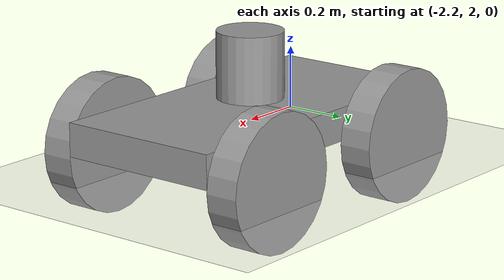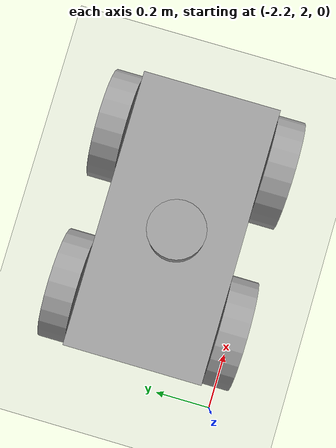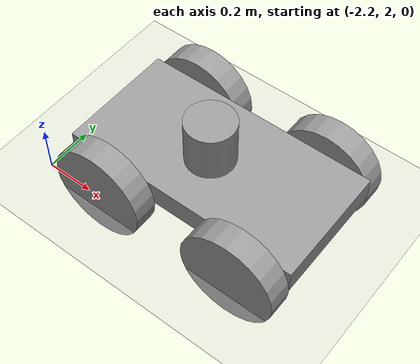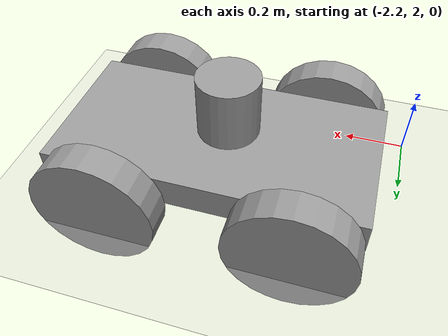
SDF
<sdf version="1.7">
 <world name="__default__">
  <model name="simplecar_clone">
   <link name="link_0">
    <inertial>
     <mass>1</mass>
     <inertia>
      <ixx>0.166667</ixx>
      <ixy>0</ixy>
      <ixz>0</ixz>
      <iyy>0.166667</iyy>
      <iyz>0</iyz>
      <izz>0.166667</izz>
     </inertia>
    </inertial>
    <pose>0.003333 0.003333 0.147691 0 -0 0</pose>
    <visual name="visual">
     <geometry><box><size>1 0.5 0.1</size></box></geometry>
     <material>
      <lighting>1</lighting>
      <script><uri>file://media/materials/scripts/gazebo.material</uri><name>Gazebo/Grey</name></script>
      <shader type="pixel"><normal_map>__default__</normal_map></shader>
      <ambient>0.3 0.3 0.3 1</ambient>
      <diffuse>0.7 0.7 0.7 1</diffuse>
      <specular>0.01 0.01 0.01 1</specular>
      <emissive>0 0 0 1</emissive>
     </material>
    </visual>
    <collision name="collision">
     <geometry><box><size>1 0.5 0.1</size></box></geometry>
     <surface>
      <friction>
       <ode><mu>1</mu><mu2>1</mu2><fdir1>0 0 0</fdir1><slip1>0</slip1><slip2>0</slip2></ode>
       <torsional>
        <coefficient>1</coefficient>
        <patch_radius>0</patch_radius>
        <surface_radius>0</surface_radius>
        <use_patch_radius>1</use_patch_radius>
        <ode><slip>0</slip></ode>
       </torsional>
      </friction>
      <bounce><restitution_coefficient>0</restitution_coefficient><threshold>1e+06</threshold></bounce>
      <contact>
       <collide_without_contact>0</collide_without_contact>
       <collide_without_contact_bitmask>1</collide_without_contact_bitmask>
       <collide_bitmask>1</collide_bitmask>
       <ode>
        <soft_cfm>0</soft_cfm>
        <soft_erp>0.2</soft_erp>
        <kp>1e+13</kp>
        <kd>1</kd>
        <max_vel>0.01</max_vel>
        <min_depth>0</min_depth>
       </ode>
       <bullet>
        <split_impulse>1</split_impulse>
        <split_impulse_penetration_threshold>-0.01</split_impulse_penetration_threshold>
        <soft_cfm>0</soft_cfm>
        <soft_erp>0.2</soft_erp>
        <kp>1e+13</kp>
        <kd>1</kd>
       </bullet>
      </contact>
     </surface>
    </collision>
   </link>
   <link name="link_1">
    <inertial>
     <mass>1</mass>
     <inertia><ixx>0.145833</ixx><ixy>0</ixy><ixz>0</ixz><iyy>0.145833</iyy><iyz>0</iyz><izz>0.125</izz></inertia>
    </inertial>
    <pose>-0.296667 0.303353 -0.112314 0 -0 0</pose>
    <visual name="visual">
     <pose>0 0 0.2 1.5707 -0 0</pose>
     <geometry><cylinder><radius>0.2</radius><length>0.1</length></cylinder></geometry>
     <material>
      <lighting>1</lighting>
      <script><uri>file://media/materials/scripts/gazebo.material</uri><name>Gazebo/Grey</name></script>
      <shader type="pixel"><normal_map>__default__</normal_map></shader>
      <ambient>0.3 0.3 0.3 1</ambient>
      <diffuse>0.7 0.7 0.7 1</diffuse>
      <specular>0.01 0.01 0.01 1</specular>
      <emissive>0 0 0 1</emissive>
     </material>
    </visual>
    <collision name="collision">
     <pose>0 0 0.2 1.5707 -0 0</pose>
     <geometry><cylinder><radius>0.2</radius><length>0.1</length></cylinder></geometry>
     <surface>
      <friction>
       <ode><mu>1</mu><mu2>1</mu2><fdir1>0 0 0</fdir1><slip1>0</slip1><slip2>0</slip2></ode>
       <torsional>
        <coefficient>1</coefficient>
        <patch_radius>0</patch_radius>
        <surface_radius>0</surface_radius>
        <use_patch_radius>1</use_patch_radius>
        <ode><slip>0</slip></ode>
       </torsional>
      </friction>
      <bounce><restitution_coefficient>0</restitution_coefficient><threshold>1e+06</threshold></bounce>
      <contact>
       <collide_without_contact>0</collide_without_contact>
       <collide_without_contact_bitmask>1</collide_without_contact_bitmask>
       <collide_bitmask>1</collide_bitmask>
       <ode>
        <soft_cfm>0</soft_cfm>
        <soft_erp>0.2</soft_erp>
        <kp>1e+13</kp>
        <kd>1</kd>
        <max_vel>0.01</max_vel>
        <min_depth>0</min_depth>
       </ode>
       <bullet>
        <split_impulse>1</split_impulse>
        <split_impulse_penetration_threshold>-0.01</split_impulse_penetration_threshold>
        <soft_cfm>0</soft_cfm>
        <soft_erp>0.2</soft_erp>
        <kp>1e+13</kp>
        <kd>1</kd>
       </bullet>
      </contact>
     </surface>
    </collision>
   </link>
   <link name="link_1_clone_0">
    <inertial>
     <mass>1</mass>
     <inertia><ixx>0.145833</ixx><ixy>0</ixy><ixz>0</ixz><iyy>0.145833</iyy><iyz>0</iyz><izz>0.125</izz></inertia>
    </inertial>
    <pose>0.303333 0.303353 -0.112314 0 -0 0</pose>
    <visual name="visual">
     <pose>0 0 0.2 1.5707 -0 0</pose>
     <geometry><cylinder><radius>0.2</radius><length>0.1</length></cylinder></geometry>
     <material>
      <lighting>1</lighting>
      <script><uri>file://media/materials/scripts/gazebo.material</uri><name>Gazebo/Grey</name></script>
      <shader type="pixel"><normal_map>__default__</normal_map></shader>
      <ambient>0.3 0.3 0.3 1</ambient>
      <diffuse>0.7 0.7 0.7 1</diffuse>
      <specular>0.01 0.01 0.01 1</specular>
      <emissive>0 0 0 1</emissive>
     </material>
    </visual>
    <collision name="collision">
     <pose>0 0 0.2 1.5707 -0 0</pose>
     <geometry><cylinder><radius>0.2</radius><length>0.1</length></cylinder></geometry>
     <surface>
      <friction>
       <ode><mu>1</mu><mu2>1</mu2><fdir1>0 0 0</fdir1><slip1>0</slip1><slip2>0</slip2></ode>
       <torsional>
        <coefficient>1</coefficient>
        <patch_radius>0</patch_radius>
        <surface_radius>0</surface_radius>
        <use_patch_radius>1</use_patch_radius>
        <ode><slip>0</slip></ode>
       </torsional>
      </friction>
      <bounce><restitution_coefficient>0</restitution_coefficient><threshold>1e+06</threshold></bounce>
      <contact>
       <collide_without_contact>0</collide_without_contact>
       <collide_without_contact_bitmask>1</collide_without_contact_bitmask>
       <collide_bitmask>1</collide_bitmask>
       <ode>
        <soft_cfm>0</soft_cfm>
        <soft_erp>0.2</soft_erp>
        <kp>1e+13</kp>
        <kd>1</kd>
        <max_vel>0.01</max_vel>
        <min_depth>0</min_depth>
       </ode>
       <bullet>
        <split_impulse>1</split_impulse>
        <split_impulse_penetration_threshold>-0.01</split_impulse_penetration_threshold>
        <soft_cfm>0</soft_cfm>
        <soft_erp>0.2</soft_erp>
        <kp>1e+13</kp>
        <kd>1</kd>
       </bullet>
      </contact>
     </surface>
    </collision>
   </link>
   <link name="link_1_clone_1">
    <inertial>
     <mass>1</mass>
     <inertia><ixx>0.145833</ixx><ixy>0</ixy><ixz>0</ixz><iyy>0.145833</iyy><iyz>0</iyz><izz>0.125</izz></inertia>
    </inertial>
    <pose>0.303333 -0.296686 -0.112314 0 -0 0</pose>
    <visual name="visual">
     <pose>0 0 0.2 1.5707 -0 0</pose>
     <geometry><cylinder><radius>0.2</radius><length>0.1</length></cylinder></geometry>
     <material>
      <lighting>1</lighting>
      <script><uri>file://media/materials/scripts/gazebo.material</uri><name>Gazebo/Grey</name></script>
      <shader type="pixel"><normal_map>__default__</normal_map></shader>
      <ambient>0.3 0.3 0.3 1</ambient>
      <diffuse>0.7 0.7 0.7 1</diffuse>
      <specular>0.01 0.01 0.01 1</specular>
      <emissive>0 0 0 1</emissive>
     </material>
    </visual>
    <collision name="collision">
     <pose>0 0 0.2 1.5707 -0 0</pose>
     <geometry><cylinder><radius>0.2</radius><length>0.1</length></cylinder></geometry>
     <surface>
      <friction>
       <ode><mu>1</mu><mu2>1</mu2><fdir1>0 0 0</fdir1><slip1>0</slip1><slip2>0</slip2></ode>
       <torsional>
        <coefficient>1</coefficient>
        <patch_radius>0</patch_radius>
        <surface_radius>0</surface_radius>
        <use_patch_radius>1</use_patch_radius>
        <ode><slip>0</slip></ode>
       </torsional>
      </friction>
      <bounce><restitution_coefficient>0</restitution_coefficient><threshold>1e+06</threshold></bounce>
      <contact>
       <collide_without_contact>0</collide_without_contact>
       <collide_without_contact_bitmask>1</collide_without_contact_bitmask>
       <collide_bitmask>1</collide_bitmask>
       <ode>
        <soft_cfm>0</soft_cfm>
        <soft_erp>0.2</soft_erp>
        <kp>1e+13</kp>
        <kd>1</kd>
        <max_vel>0.01</max_vel>
        <min_depth>0</min_depth>
       </ode>
       <bullet>
        <split_impulse>1</split_impulse>
        <split_impulse_penetration_threshold>-0.01</split_impulse_penetration_threshold>
        <soft_cfm>0</soft_cfm>
        <soft_erp>0.2</soft_erp>
        <kp>1e+13</kp>
        <kd>1</kd>
       </bullet>
      </contact>
     </surface>
    </collision>
   </link>
   <link name="link_1_clone_1_clone">
    <inertial>
     <mass>1</mass>
     <inertia><ixx>0.145833</ixx><ixy>0</ixy><ixz>0</ixz><iyy>0.145833</iyy><iyz>0</iyz><izz>0.125</izz></inertia>
    </inertial>
    <pose>-0.296667 -0.296686 -0.112314 0 -0 0</pose>
    <visual name="visual">
     <pose>0 0 0.2 1.5707 -0 0</pose>
     <geometry><cylinder><radius>0.2</radius><length>0.1</length></cylinder></geometry>
     <material>
      <lighting>1</lighting>
      <script><uri>file://media/materials/scripts/gazebo.material</uri><name>Gazebo/Grey</name></script>
      <shader type="pixel"><normal_map>__default__</normal_map></shader>
      <ambient>0.3 0.3 0.3 1</ambient>
      <diffuse>0.7 0.7 0.7 1</diffuse>
      <specular>0.01 0.01 0.01 1</specular>
      <emissive>0 0 0 1</emissive>
     </material>
    </visual>
    <collision name="collision">
     <pose>0 0 0.2 1.5707 -0 0</pose>
     <geometry><cylinder><radius>0.2</radius><length>0.1</length></cylinder></geometry>
     <surface>
      <friction>
       <ode><mu>1</mu><mu2>1</mu2><fdir1>0 0 0</fdir1><slip1>0</slip1><slip2>0</slip2></ode>
       <torsional>
        <coefficient>1</coefficient>
        <patch_radius>0</patch_radius>
        <surface_radius>0</surface_radius>
        <use_patch_radius>1</use_patch_radius>
        <ode><slip>0</slip></ode>
       </torsional>
      </friction>
      <bounce><restitution_coefficient>0</restitution_coefficient><threshold>1e+06</threshold></bounce>
      <contact>
       <collide_without_contact>0</collide_without_contact>
       <collide_without_contact_bitmask>1</collide_without_contact_bitmask>
       <collide_bitmask>1</collide_bitmask>
       <ode>
        <soft_cfm>0</soft_cfm>
        <soft_erp>0.2</soft_erp>
        <kp>1e+13</kp>
        <kd>1</kd>
        <max_vel>0.01</max_vel>
        <min_depth>0</min_depth>
       </ode>
       <bullet>
        <split_impulse>1</split_impulse>
        <split_impulse_penetration_threshold>-0.01</split_impulse_penetration_threshold>
        <soft_cfm>0</soft_cfm>
        <soft_erp>0.2</soft_erp>
        <kp>1e+13</kp>
        <kd>1</kd>
       </bullet>
      </contact>
     </surface>
    </collision>
   </link>
   <link name="link_3">
    <inertial>
     <mass>1</mass>
     <inertia><ixx>0.145833</ixx><ixy>0</ixy><ixz>0</ixz><iyy>0.145833</iyy><iyz>0</iyz><izz>0.125</izz></inertia>
    </inertial>
    <pose>-0.016667 -0.016667 0.301567 0 -0 0</pose>
    <visual name="visual">
     <geometry><cylinder><radius>0.1</radius><length>0.2</length></cylinder></geometry>
     <material>
      <lighting>1</lighting>
      <script><uri>file://media/materials/scripts/gazebo.material</uri><name>Gazebo/Grey</name></script>
      <shader type="pixel"><normal_map>__default__</normal_map></shader>
      <ambient>0.3 0.3 0.3 1</ambient>
      <diffuse>0.7 0.7 0.7 1</diffuse>
      <specular>0.01 0.01 0.01 1</specular>
      <emissive>0 0 0 1</emissive>
     </material>
    </visual>
    <collision name="collision">
     <geometry><cylinder><radius>0.1</radius><length>0.2</length></cylinder></geometry>
     <surface>
      <friction>
       <ode><mu>1</mu><mu2>1</mu2><fdir1>0 0 0</fdir1><slip1>0</slip1><slip2>0</slip2></ode>
       <torsional>
        <coefficient>1</coefficient>
        <patch_radius>0</patch_radius>
        <surface_radius>0</surface_radius>
        <use_patch_radius>1</use_patch_radius>
        <ode><slip>0</slip></ode>
       </torsional>
      </friction>
      <bounce><restitution_coefficient>0</restitution_coefficient><threshold>1e+06</threshold></bounce>
      <contact>
       <collide_without_contact>0</collide_without_contact>
       <collide_without_contact_bitmask>1</collide_without_contact_bitmask>
       <collide_bitmask>1</collide_bitmask>
       <ode>
        <soft_cfm>0</soft_cfm>
        <soft_erp>0.2</soft_erp>
        <kp>1e+13</kp>
        <kd>1</kd>
        <max_vel>0.01</max_vel>
        <min_depth>0</min_depth>
       </ode>
       <bullet>
        <split_impulse>1</split_impulse>
        <split_impulse_penetration_threshold>-0.01</split_impulse_penetration_threshold>
        <soft_cfm>0</soft_cfm>
        <soft_erp>0.2</soft_erp>
        <kp>1e+13</kp>
        <kd>1</kd>
       </bullet>
      </contact>
     </surface>
    </collision>
   </link>
   <joint name="link_0_JOINT_1" type="revolute">
    <parent>link_0</parent>
    <child>link_1</child>
    <axis>
     <xyz>1 0 0</xyz>
     <limit>
      <lower>-1.79769e+308</lower>
      <upper>1.79769e+308</upper>
      <effort>-1</effort>
      <velocity>-1</velocity>
     </limit>
     <dynamics>
      <spring_reference>0</spring_reference>
      <spring_stiffness>0</spring_stiffness>
      <damping>0</damping>
      <friction>0</friction>
     </dynamics>
    </axis>
    <physics>
     <ode><limit><cfm>0</cfm><erp>0.2</erp></limit><suspension><cfm>0</cfm><erp>0.2</erp></suspension></ode>
    </physics>
   </joint>
   <joint name="link_0_JOINT_2" type="revolute">
    <parent>link_0</parent>
    <child>link_1_clone_1_clone</child>
    <axis>
     <xyz>0 0 1</xyz>
     <limit>
      <lower>-1.79769e+308</lower>
      <upper>1.79769e+308</upper>
      <effort>-1</effort>
      <velocity>-1</velocity>
     </limit>
     <dynamics>
      <spring_reference>0</spring_reference>
      <spring_stiffness>0</spring_stiffness>
      <damping>0</damping>
      <friction>0</friction>
     </dynamics>
    </axis>
    <physics>
     <ode><limit><cfm>0</cfm><erp>0.2</erp></limit><suspension><cfm>0</cfm><erp>0.2</erp></suspension></ode>
    </physics>
   </joint>
   <joint name="link_0_JOINT_3" type="revolute">
    <parent>link_0</parent>
    <child>link_1_clone_1</child>
    <axis>
     <xyz>0 0 1</xyz>
     <limit>
      <lower>-1.79769e+308</lower>
      <upper>1.79769e+308</upper>
      <effort>-1</effort>
      <velocity>-1</velocity>
     </limit>
     <dynamics>
      <spring_reference>0</spring_reference>
      <spring_stiffness>0</spring_stiffness>
      <damping>0</damping>
      <friction>0</friction>
     </dynamics>
    </axis>
    <physics>
     <ode><limit><cfm>0</cfm><erp>0.2</erp></limit><suspension><cfm>0</cfm><erp>0.2</erp></suspension></ode>
    </physics>
   </joint>
   <joint name="link_0_JOINT_4" type="revolute">
    <parent>link_0</parent>
    <child>link_1_clone_0</child>
    <axis>
     <xyz>0 0 1</xyz>
     <limit>
      <lower>-1.79769e+308</lower>
      <upper>1.79769e+308</upper>
      <effort>-1</effort>
      <velocity>-1</velocity>
     </limit>
     <dynamics>
      <spring_reference>0</spring_reference>
      <spring_stiffness>0</spring_stiffness>
      <damping>0</damping>
      <friction>0</friction>
     </dynamics>
    </axis>
    <physics>
     <ode><limit><cfm>0</cfm><erp>0.2</erp></limit><suspension><cfm>0</cfm><erp>0.2</erp></suspension></ode>
    </physics>
   </joint>
   <joint name="link_0_JOINT_5" type="fixed">
    <parent>link_0</parent>
    <child>link_3</child>
    <physics>
     <ode><limit><cfm>0</cfm><erp>0.2</erp></limit><suspension><cfm>0</cfm><erp>0.2</erp></suspension></ode>
    </physics>
   </joint>
   <static>1</static>
   <pose>-1.61821 2.30713 0 0 -0 0</pose>
  </model>
  <model name="ground_plane">
   <static>1</static>
   <link name="link">
    <collision name="collision">
     <geometry><plane><normal>0 0 1</normal><size>100 100</size></plane></geometry>
     <surface>
      <contact><collide_bitmask>65535</collide_bitmask></contact>
      <friction><ode><mu>100</mu><mu2>50</mu2></ode></friction>
     </surface>
    </collision>
    <visual name="visual">
     <cast_shadows>0</cast_shadows>
     <geometry><plane><normal>0 0 1</normal><size>100 100</size></plane></geometry>
     <material>
      <script><uri>file://media/materials/scripts/gazebo.material</uri><name>Gazebo/Grey</name></script>
     </material>
    </visual>
   </link>
   <pose>-59.0264 48.4098 0 0 -0 0</pose>
  </model>
 </world>
</sdf>
